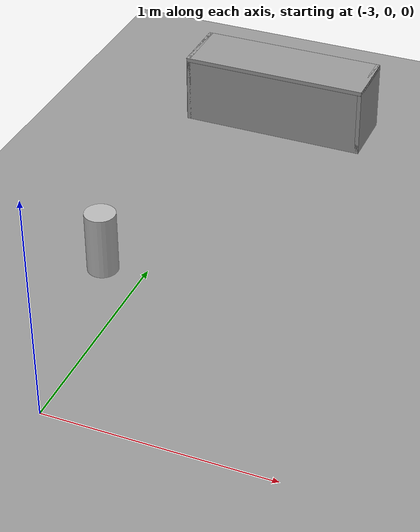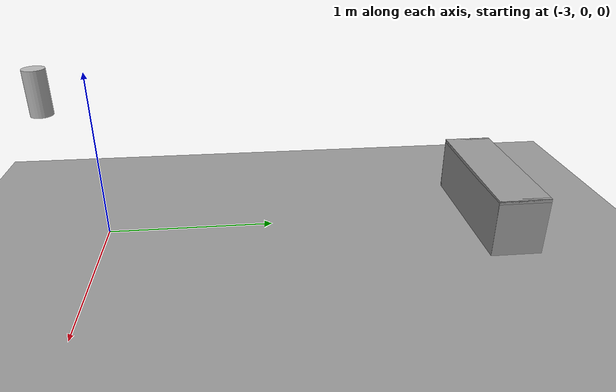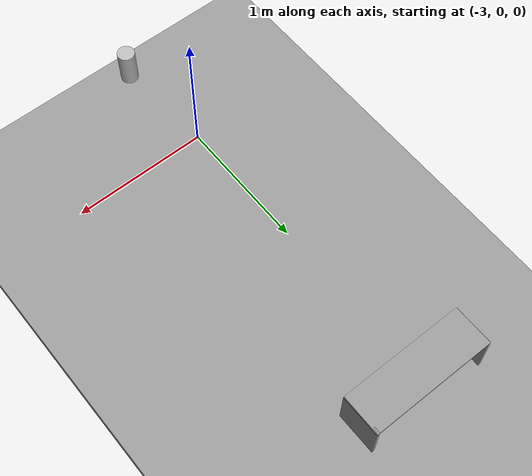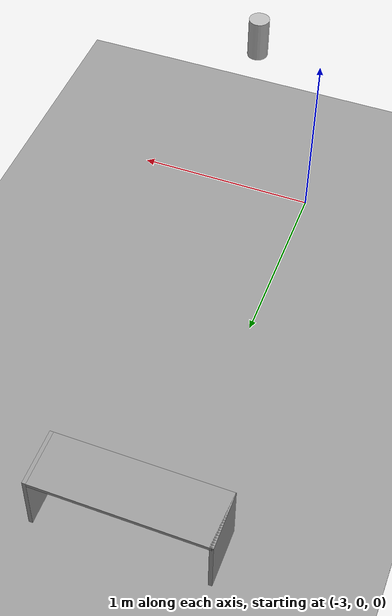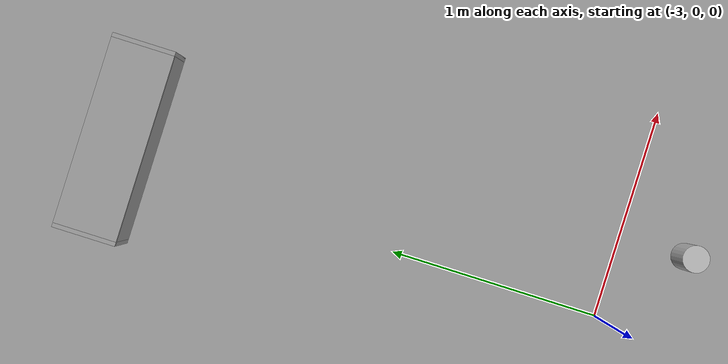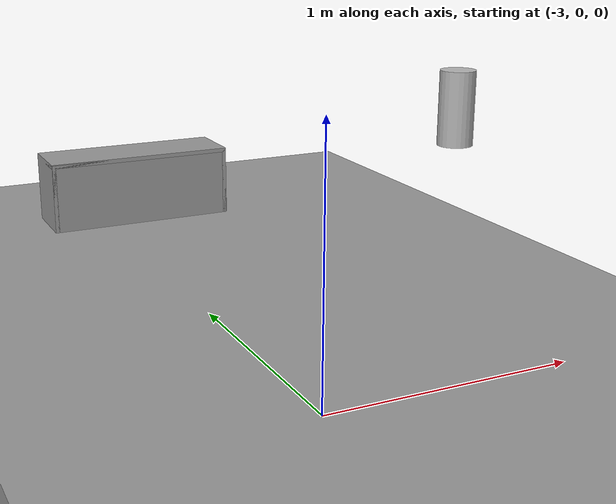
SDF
<sdf version="1.7">
 <world name="default">
  <model name="ground_plane">
   <static>1</static>
   <link name="link">
    <collision name="collision">
     <geometry><plane><normal>0 0 1</normal><size>100 100</size></plane></geometry>
     <surface><friction><ode><mu>100</mu><mu2>50</mu2></ode></friction></surface>
    </collision>
    <visual name="visual">
     <cast_shadows>0</cast_shadows>
     <geometry><plane><normal>0 0 1</normal><size>100 100</size></plane></geometry>
     <material>
      <script><uri>file://media/materials/scripts/gazebo.material</uri><name>Gazebo/Grey</name></script>
     </material>
    </visual>
   </link>
  </model>
  <model name="Wall_Cabinet_36x15W">
   <link name="Wall_0">
    <pose>0 0 0.01 0 -0 0</pose>
    <inertial>
     <mass>1.9796</mass>
     <inertia><ixx>0.0145</ixx><iyy>0.1511</iyy><izz>0.1367</izz><ixy>0</ixy><ixz>0</ixz><iyz>0</iyz></inertia>
    </inertial>
    <collision name="Wall_0_Collision"><geometry><box><size>0.91 0.296 0.02</size></box></geometry></collision>
    <visual name="Wall_0_Visual">
     <geometry><box><size>0.91 0.296 0.02</size></box></geometry>
     <material>
      <script><uri>file://media/materials/scripts/gazebo.material</uri><name>Gazebo/Grey</name></script>
      <ambient>1 1 1 1</ambient>
     </material>
    </visual>
   </link>
   <joint name="0_2" type="fixed">
    <pose>-0.455 0 0 0 -0 0</pose>
    <parent>Wall_2</parent>
    <child>Wall_0</child>
    <axis><xyz>0 0 1</xyz><limit><lower>-1e+16</lower><upper>1e+16</upper></limit></axis>
   </joint>
   <joint name="0_4" type="fixed">
    <pose>0.455 0 0 0 -0 0</pose>
    <parent>Wall_4</parent>
    <child>Wall_0</child>
    <axis><xyz>0 0 1</xyz><limit><lower>-1e+16</lower><upper>1e+16</upper></limit></axis>
   </joint>
   <joint name="0_8" type="fixed">
    <pose>0 -0.148 0 0 -0 0</pose>
    <parent>Wall_8</parent>
    <child>Wall_0</child>
    <axis><xyz>0 0 1</xyz><limit><lower>-1e+16</lower><upper>1e+16</upper></limit></axis>
   </joint>
   <link name="Wall_2">
    <pose>-0.445 0 0.192 0 -0 0</pose>
    <inertial>
     <mass>0.8353</mass>
     <inertia><ixx>0.0061</ixx><iyy>0.0164</iyy><izz>0.0103</izz><ixy>0</ixy><ixz>0</ixz><iyz>0</iyz></inertia>
    </inertial>
    <collision name="Wall_2_Collision"><geometry><box><size>0.02 0.296 0.384</size></box></geometry></collision>
    <visual name="Wall_2_Visual">
     <geometry><box><size>0.02 0.296 0.384</size></box></geometry>
     <material>
      <script><uri>file://media/materials/scripts/gazebo.material</uri><name>Gazebo/Grey</name></script>
      <ambient>1 1 1 1</ambient>
     </material>
    </visual>
   </link>
   <link name="Wall_4">
    <pose>0.445 0 0.192 0 -0 0</pose>
    <inertial>
     <mass>0.8353</mass>
     <inertia><ixx>0.0061</ixx><iyy>0.0164</iyy><izz>0.0103</izz><ixy>0</ixy><ixz>0</ixz><iyz>0</iyz></inertia>
    </inertial>
    <collision name="Wall_4_Collision"><geometry><box><size>0.02 0.296 0.384</size></box></geometry></collision>
    <visual name="Wall_4_Visual">
     <geometry><box><size>0.02 0.296 0.384</size></box></geometry>
     <material>
      <script><uri>file://media/materials/scripts/gazebo.material</uri><name>Gazebo/Grey</name></script>
      <ambient>1 1 1 1</ambient>
     </material>
    </visual>
   </link>
   <link name="Wall_6">
    <pose>0 0 0.374 0 -0 0</pose>
    <inertial>
     <mass>1.9796</mass>
     <inertia><ixx>0.0145</ixx><iyy>0.1511</iyy><izz>0.1367</izz><ixy>0</ixy><ixz>0</ixz><iyz>0</iyz></inertia>
    </inertial>
    <collision name="Wall_6_Collision"><geometry><box><size>0.91 0.296 0.02</size></box></geometry></collision>
    <visual name="Wall_6_Visual">
     <geometry><box><size>0.91 0.296 0.02</size></box></geometry>
     <material>
      <script><uri>file://media/materials/scripts/gazebo.material</uri><name>Gazebo/Grey</name></script>
      <ambient>1 1 1 1</ambient>
     </material>
    </visual>
   </link>
   <joint name="6_2" type="fixed">
    <pose>-0.455 0 0 0 -0 0</pose>
    <parent>Wall_2</parent>
    <child>Wall_6</child>
    <axis><xyz>0 0 1</xyz><limit><lower>-1e+16</lower><upper>1e+16</upper></limit></axis>
   </joint>
   <joint name="6_4" type="fixed">
    <pose>0.455 0 0 0 -0 0</pose>
    <parent>Wall_4</parent>
    <child>Wall_6</child>
    <axis><xyz>0 0 1</xyz><limit><lower>-1e+16</lower><upper>1e+16</upper></limit></axis>
   </joint>
   <joint name="6_8" type="fixed">
    <pose>0 -0.148 0 0 -0 0</pose>
    <parent>Wall_8</parent>
    <child>Wall_6</child>
    <axis><xyz>0 0 1</xyz><limit><lower>-1e+16</lower><upper>1e+16</upper></limit></axis>
   </joint>
   <link name="Wall_8">
    <pose>0 -0.138 0.19 0 -0 0</pose>
    <inertial>
     <mass>2.5302</mass>
     <inertia><ixx>0.0305</ixx><iyy>0.1732</iyy><izz>0.2035</izz><ixy>0</ixy><ixz>0</ixz><iyz>0</iyz></inertia>
    </inertial>
    <collision name="Wall_8_Collision"><geometry><box><size>0.906 0.02 0.38</size></box></geometry></collision>
    <visual name="Wall_8_Visual">
     <geometry><box><size>0.906 0.02 0.38</size></box></geometry>
     <material>
      <script><uri>file://media/materials/scripts/gazebo.material</uri><name>Gazebo/Grey</name></script>
      <ambient>1 1 1 1</ambient>
     </material>
    </visual>
   </link>
   <joint name="8_2" type="fixed">
    <pose>-0.453 0 0 0 -0 0</pose>
    <parent>Wall_2</parent>
    <child>Wall_8</child>
    <axis><xyz>0 1 0</xyz><limit><lower>-1e+16</lower><upper>1e+16</upper></limit></axis>
   </joint>
   <joint name="8_4" type="fixed">
    <pose>0.453 0 0 0 -0 0</pose>
    <parent>Wall_4</parent>
    <child>Wall_8</child>
    <axis><xyz>0 1 0</xyz><limit><lower>-1e+16</lower><upper>1e+16</upper></limit></axis>
   </joint>
   <static>1</static>
   <pose>-2.87733 2.34991 0.009018 0 -0 0</pose>
  </model>
  <model name="ground_plane_0">
   <static>1</static>
   <link name="link">
    <collision name="collision">
     <geometry><plane><normal>0 0 1</normal><size>100 100</size></plane></geometry>
     <surface>
      <contact><collide_bitmask>65535</collide_bitmask></contact>
      <friction><ode><mu>100</mu><mu2>50</mu2></ode></friction>
     </surface>
    </collision>
    <visual name="visual">
     <cast_shadows>0</cast_shadows>
     <geometry><plane><normal>0 0 1</normal><size>100 100</size></plane></geometry>
     <material>
      <script><uri>file://media/materials/scripts/gazebo.material</uri><name>Gazebo/Grey</name></script>
     </material>
    </visual>
   </link>
   <pose>-3.39305 -1.91937 0 0 -0 0</pose>
  </model>
  <model name="beer">
   <link name="link">
    <pose>0 0 0.115 0 -0 0</pose>
    <inertial>
     <mass>0.39</mass>
     <inertia><ixx>0.00058</ixx><ixy>0</ixy><ixz>0</ixz><iyy>0.00058</iyy><iyz>0</iyz><izz>0.00019</izz></inertia>
    </inertial>
    <collision name="collision">
     <geometry><cylinder><radius>0.055</radius><length>0.23</length></cylinder></geometry>
    </collision>
    <visual name="visual">
     <geometry><cylinder><radius>0.055</radius><length>0.23</length></cylinder></geometry>
     <material>
      <script>
       <uri>model://beer/materials/scripts</uri>
       <uri>model://beer/materials/textures</uri>
       <name>Beer/Diffuse</name>
      </script>
     </material>
    </visual>
   </link>
   <pose>-2.61716 -0.120705 0.897134 9.4e-05 3.2e-05 -8e-05</pose>
  </model>
 </world>
</sdf>
